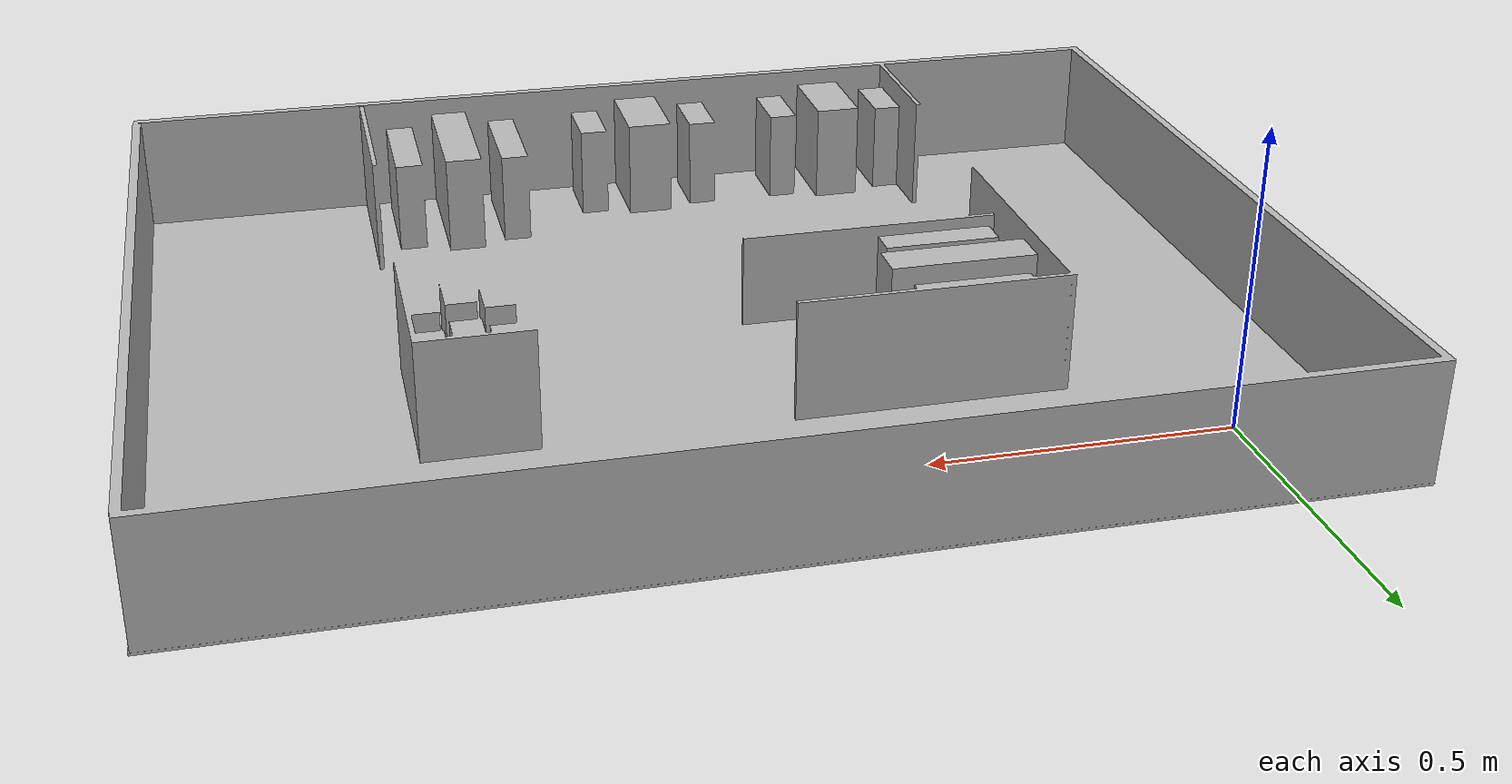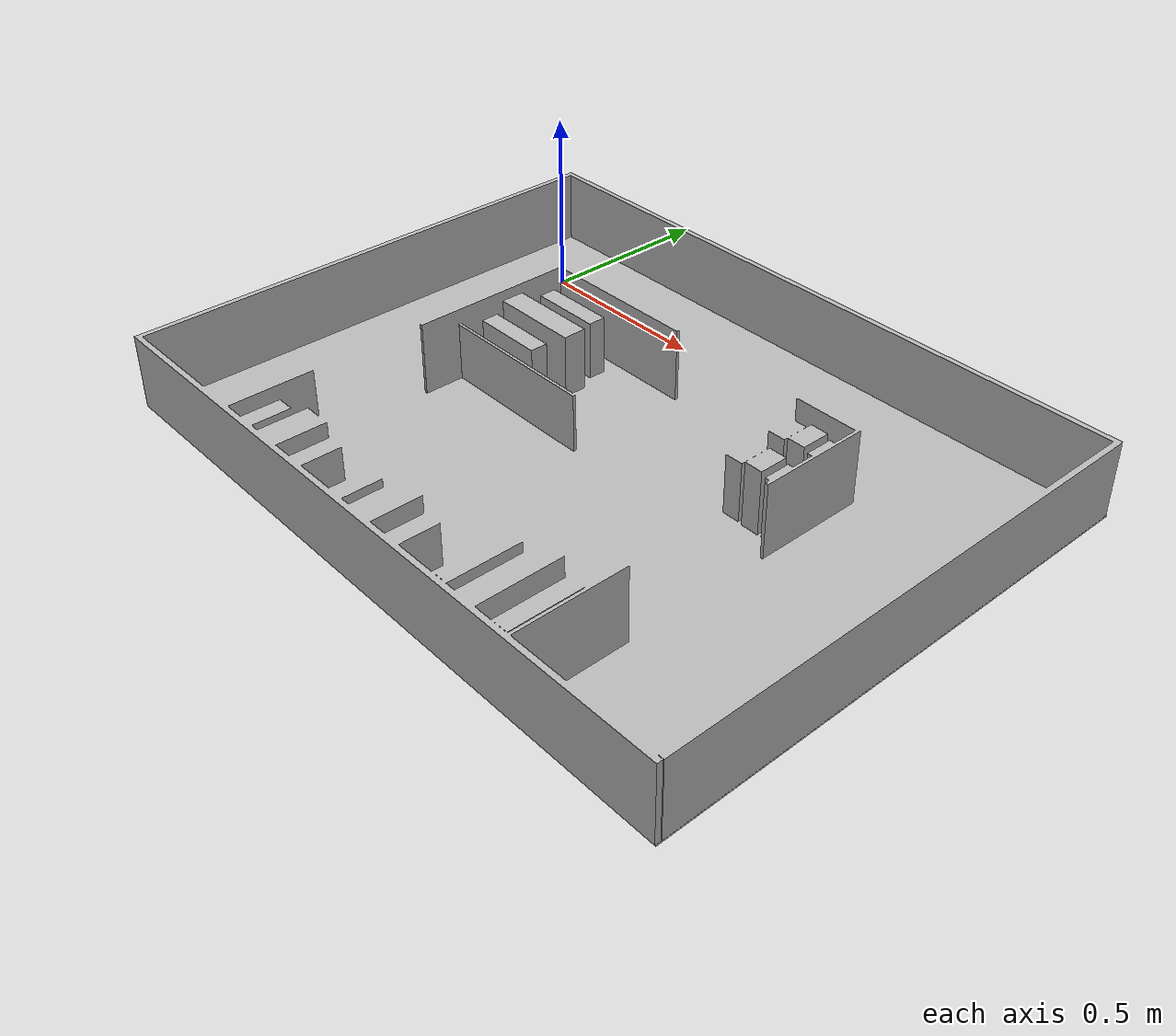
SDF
<?xml version="1.0"?>
<sdf version="1.6">
  <world name="Rostaurant">

    <plugin filename="gz-sim-physics-system" name="gz::sim::systems::Physics"/>
    <plugin filename="gz-sim-user-commands-system" name="gz::sim::systems::UserCommands"/>
    <plugin filename="gz-sim-scene-broadcaster-system" name="gz::sim::systems::SceneBroadcaster"/>
    <plugin filename="gz-sim-sensors-system" name="gz::sim::systems::Sensors">
      <render_engine>ogre2</render_engine>
    </plugin>
    <plugin filename="gz-sim-imu-system" name="gz::sim::systems::Imu"/>

<!-- Lighting -->
    <light type="directional" name="sun">
      <cast_shadows>true</cast_shadows>
      <pose>0 0 10 0 0 0</pose>
      <diffuse>1 1 1 1</diffuse>
      <specular>0.5 0.5 0.5 1</specular>
      <direction>-0.5 0.1 -0.9</direction>
    </light>

    <scene>
      <ambient>0.4 0.4 0.4 1</ambient>
      <background>0.7 0.7 0.7 1</background>
      <shadows>true</shadows>
    </scene>

    <!-- Custom Map -->
    <include>
      <uri>model://map4</uri>
      <pose>0 0 0 0 0 0</pose>
    </include>

    <physics type="ode">
      <real_time_update_rate>1000.0</real_time_update_rate>
      <max_step_size>0.001</max_step_size>
      <real_time_factor>1</real_time_factor>
    </physics>

  </world>
</sdf>

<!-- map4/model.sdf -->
<sdf version="1.6">
  <model name="Rostaurant">
    <static>true</static>
    <link name="link">
      <collision name="collision">
        <geometry>
          <mesh>
            <uri>model://map4/meshes/map4_merge.obj</uri>
            <scale>1 1 1</scale>
          </mesh>
        </geometry>
      </collision>
      <visual name="visual">
        <geometry>
          <mesh>
            <uri>model://map4/meshes/map4_merge.obj</uri>
            <scale>1 1 1</scale>
          </mesh>
        </geometry>
      </visual>
    </link>
  </model>
</sdf>
